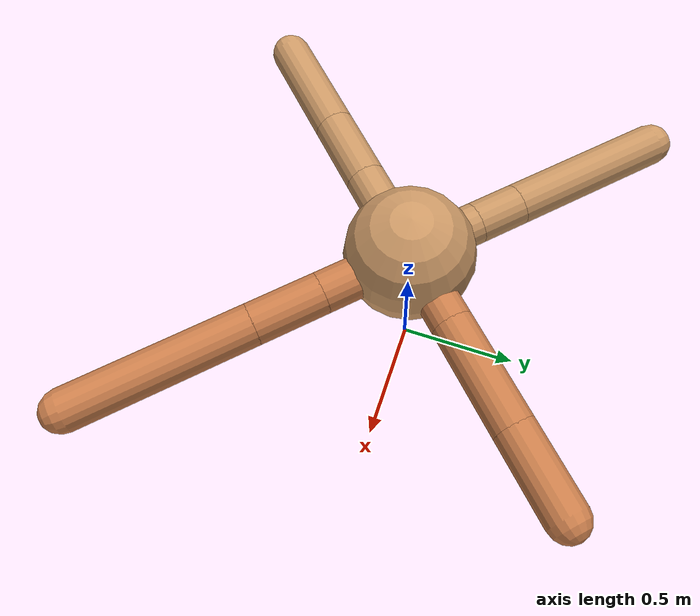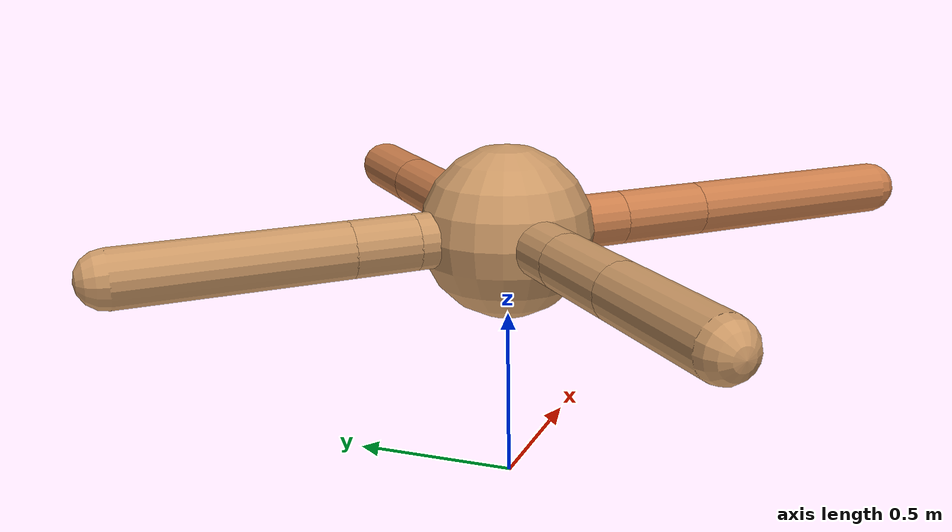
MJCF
<mujoco model="ant">
  <compiler angle="degree" coordinate="local" inertiafromgeom="true" />
  <option integrator="RK4" timestep="0.01" />
  <custom>
    <numeric data="0.0 0.0 0.55 1.0 0.0 0.0 0.0 0.0 1.0 0.0 -1.0 0.0 -1.0 0.0 1.0" name="init_qpos" />
  </custom>
  <default>
    <joint armature="1" damping="1" limited="true" />
    <geom conaffinity="0" condim="3" density="5.0" friction="1.5 0.1 0.1" margin="0.01" rgba="0.8 0.6 0.4 1" />
  </default>
  <worldbody>
    <body name="torso" pos="0 0 0.75">
      <geom name="torso_geom" pos="0 0 0" size="0.25" type="sphere" />

      <body name="front_left_leg" pos="0 0 0">
        <geom fromto="0.0 0.0 0.0 0.2259447659858944 0.2259447659858944 0.0" name="aux_1_geom" size="0.08" type="capsule" rgba=".8 .5 .3 1" />
        <body name="aux_1" pos="0.2259447659858944 0.2259447659858944 0.0">
          <joint axis="0 0 1" name="hip_1" pos="0.0 0.0 0.0" range="-40 40" type="hinge" />
          <geom fromto="0.0 0.0 0.0 0.29642807985056246 0.29642807985056246 0.0" name="left_leg_geom" size="0.08" type="capsule" rgba=".8 .5 .3 1" />
          <body pos="0.29642807985056246 0.29642807985056246 0.0" name="front_left_foot">
            <joint axis="-1 1 0" name="ankle_1" pos="0.0 0.0 0.0" range="30 100" type="hinge" />
            <geom fromto="0.0 0.0 0.0 0.22922756344427186 0.22922756344427186 0.0" name="left_ankle_geom" size="0.08" type="capsule" rgba=".8 .5 .3 1" />
          </body>
        </body>
      </body>
      <body name="front_right_leg" pos="0 0 0">
        <geom fromto="0.0 0.0 0.0 -0.2 0.2 0.0" name="aux_2_geom" size="0.08" type="capsule" />
        <body name="aux_2" pos="-0.2 0.2 0.0">
          <joint axis="0 0 1" name="hip_2" pos="0.0 0.0 0.0" range="-40 40" type="hinge" />
          <geom fromto="0.0 0.0 0.0 -0.12910937000625988 0.12910937000625988 0.0" name="right_leg_geom" size="0.08" type="capsule" />
          <body pos="-0.12910937000625988 0.12910937000625988 0.0" name="front_right_foot">
            <joint axis="1 1 0" name="ankle_2" pos="0.0 0.0 0.0" range="-100 -30" type="hinge" />
            <geom fromto="0.0 0.0 0.0 -0.4407892209418748 0.4407892209418748 0.0" name="right_ankle_geom" size="0.08" type="capsule" />
          </body>
        </body>
      </body>
      <body name="left_back_leg" pos="0 0 0">
        <geom fromto="0.0 0.0 0.0 -0.2605778760505237 -0.2605778760505237 0.0" name="aux_3_geom" size="0.08" type="capsule" />
        <body name="aux_3" pos="-0.2605778760505237 -0.2605778760505237 0.0">
          <joint axis="0 0 1" name="hip_3" pos="0.0 0.0 0.0" range="-40 40" type="hinge" />
          <geom fromto="0.0 0.0 0.0 -0.20183521601747115 -0.20183521601747115 0.0" name="back_leg_geom" size="0.08" type="capsule" />
          <body pos="-0.20183521601747115 -0.20183521601747115 0.0" name="left_back_foot">
            <joint axis="-1 1 0" name="ankle_3" pos="0.0 0.0 0.0" range="-100 -30" type="hinge" />
            <geom fromto="0.0 0.0 0.0 -0.30665381361680644 -0.30665381361680644 0.0" name="third_ankle_geom" size="0.08" type="capsule" />
          </body>
        </body>
      </body>
      <body name="right_back_leg" pos="0 0 0">
        <geom fromto="0.0 0.0 0.0 0.25620511697838666 -0.25620511697838666 0.0" name="aux_4_geom" size="0.08" type="capsule" rgba=".8 .5 .3 1" />
        <body name="aux_4" pos="0.25620511697838666 -0.25620511697838666 0.0">
          <joint axis="0 0 1" name="hip_4" pos="0.0 0.0 0.0" range="-40 40" type="hinge" />
          <geom fromto="0.0 0.0 0.0 0.19068355163654405 -0.19068355163654405 0.0" name="rightback_leg_geom" size="0.08" type="capsule" rgba=".8 .5 .3 1" />
          <body pos="0.19068355163654405 -0.19068355163654405 0.0" name="right_back_foot">
            <joint axis="1 1 0" name="ankle_4" pos="0.0 0.0 0.0" range="30 100" type="hinge" />
            <geom fromto="0.0 0.0 0.0 0.48616586815628227 -0.48616586815628227 0.0" name="fourth_ankle_geom" size="0.08" type="capsule" rgba=".8 .5 .3 1" />
          </body>
        </body>
      </body>
    </body>
  </worldbody>
  <actuator>
    <motor ctrllimited="true" ctrlrange="-1.0 1.0" joint="hip_4" gear="150" />
    <motor ctrllimited="true" ctrlrange="-1.0 1.0" joint="ankle_4" gear="150" />
    <motor ctrllimited="true" ctrlrange="-1.0 1.0" joint="hip_1" gear="150" />
    <motor ctrllimited="true" ctrlrange="-1.0 1.0" joint="ankle_1" gear="150" />
    <motor ctrllimited="true" ctrlrange="-1.0 1.0" joint="hip_2" gear="150" />
    <motor ctrllimited="true" ctrlrange="-1.0 1.0" joint="ankle_2" gear="150" />
    <motor ctrllimited="true" ctrlrange="-1.0 1.0" joint="hip_3" gear="150" />
    <motor ctrllimited="true" ctrlrange="-1.0 1.0" joint="ankle_3" gear="150" />
  </actuator>
</mujoco>
